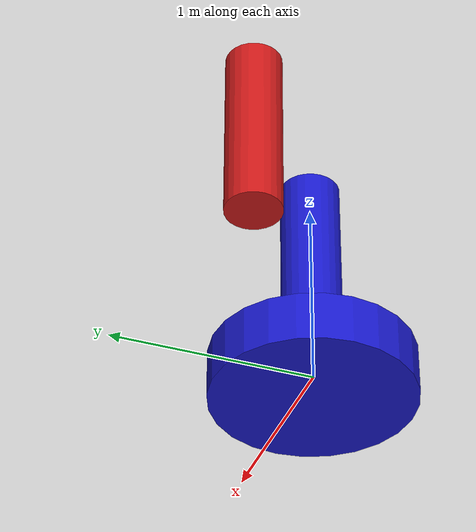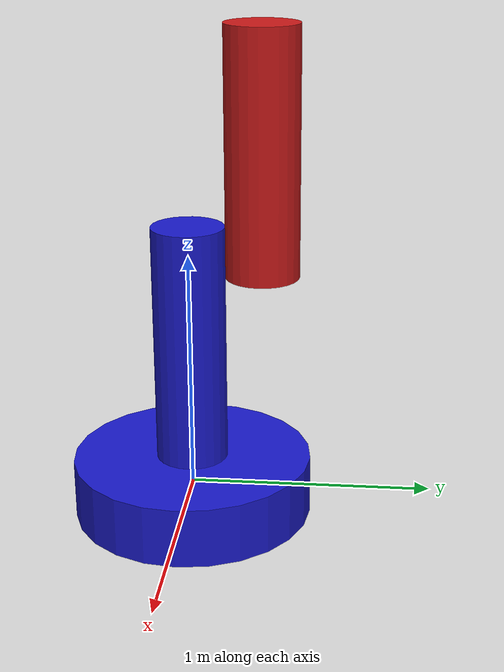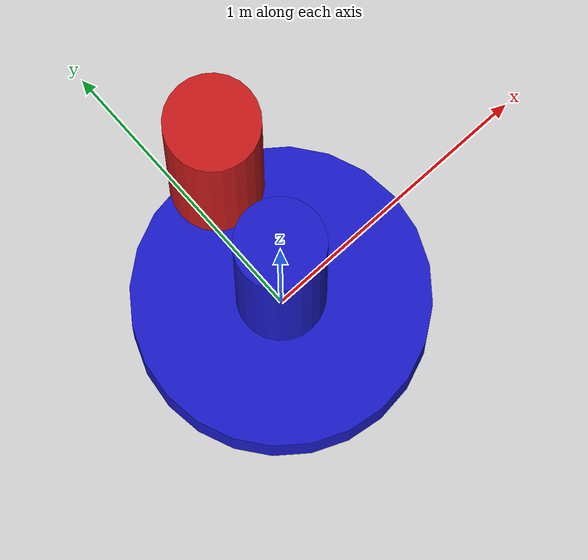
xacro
<?xml version="1.0"?>
<robot xmlns:xacro="http://www.ros.org/wiki/xacro" name="robot_arm">

  <!-- Define world link -->
  <link name="world"/>

  <!-- Define base link -->
  <link name="base_link">
    <visual>
      <geometry>
        <cylinder radius="0.5" length="0.25"/>
      </geometry>
      <origin xyz="0 0 0" rpy="0 0 0"/>
      <material name="blue">
        <color rgba="0.1 0.1 0.8 1"/>
      </material>
    </visual>
    <collision>
      <geometry>
        <cylinder radius="0.5" length="0.25"/>
      </geometry>
    </collision>
    <inertial>
      <mass value="1.0"/>
      <inertia ixx="0.083" ixy="0" ixz="0" iyy="0.083" iyz="0" izz="0.083"/>
    </inertial>
  </link>

  <!-- Define a joint connecting base_link to the world -->
  <joint name="virtual_joint" type="fixed">
    <parent link="world"/>
    <child link="base_link"/>
    <origin rpy="0 0 0" xyz="0 0 0"/>
  </joint>

  <!-- Define link_1 with collision and inertia -->
  <link name="link_1">
    <visual>
      <geometry>
        <cylinder radius="0.15" length="1"/>
      </geometry>
      <origin xyz="0 0 0.5" rpy="0 0 0"/>
      <material name="blue">
        <color rgba="0.1 0.1 0.8 1"/>
      </material>
    </visual>
    <collision>
      <geometry>
        <cylinder radius="0.15" length="1"/>
      </geometry>
    </collision>
    <inertial>
      <mass value="1.0"/>
      <inertia ixx="0.025" ixy="0" ixz="0" iyy="0.025" iyz="0" izz="0.025"/>
    </inertial>
  </link>

  <!-- Define arm_joint -->
  <joint name="arm_joint" type="revolute">
    <parent link="base_link"/>
    <child link="link_1"/>
    <axis xyz="0 0 1"/>
    <origin rpy="0 0 0" xyz="0 0 0.125"/>
    <limit lower="-3.14159" upper="3.14159" effort="30.0" velocity="10.0"/>
  </joint>

  <!-- Define link_2 with collision and inertia -->
  <link name="link_2">
    <visual>
      <geometry>
        <cylinder radius="0.15" length="1"/>
      </geometry>
      <origin xyz="0 0 0.5" rpy="0 0 0"/>
      <material name="red">
        <color rgba="0.8 0.1 0.1 1"/>
      </material>
    </visual>
    <collision>
      <geometry>
        <cylinder radius="0.15" length="1"/>
      </geometry>
    </collision>
    <inertial>
      <mass value="1.0"/>
      <inertia ixx="0.025" ixy="0" ixz="0" iyy="0.025" iyz="0" izz="0.025"/>
    </inertial>
  </link>

  <!-- Define arm_joint2 -->
  <joint name="arm_joint2" type="revolute">
    <parent link="link_1"/>
    <child link="link_2"/>
    <axis xyz="0 1 0"/>
    <origin rpy="0 0 0" xyz="0 0.3 0.8"/>
    <limit lower="-3.14159" upper="3.14159" effort="30.0" velocity="10.0"/>
  </joint>

</robot>
